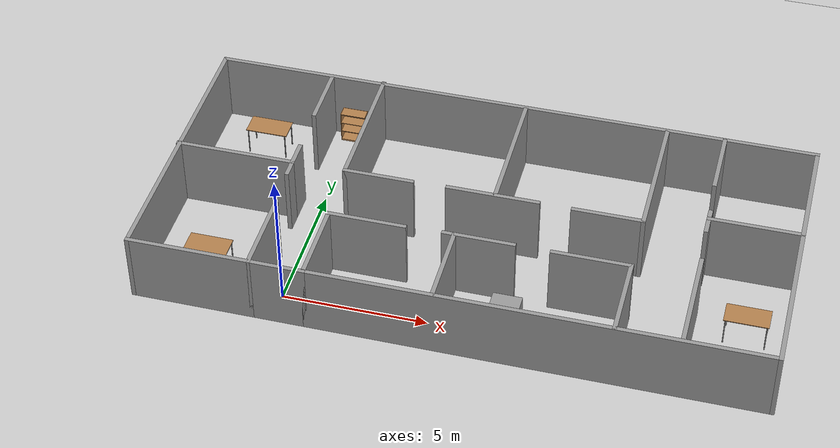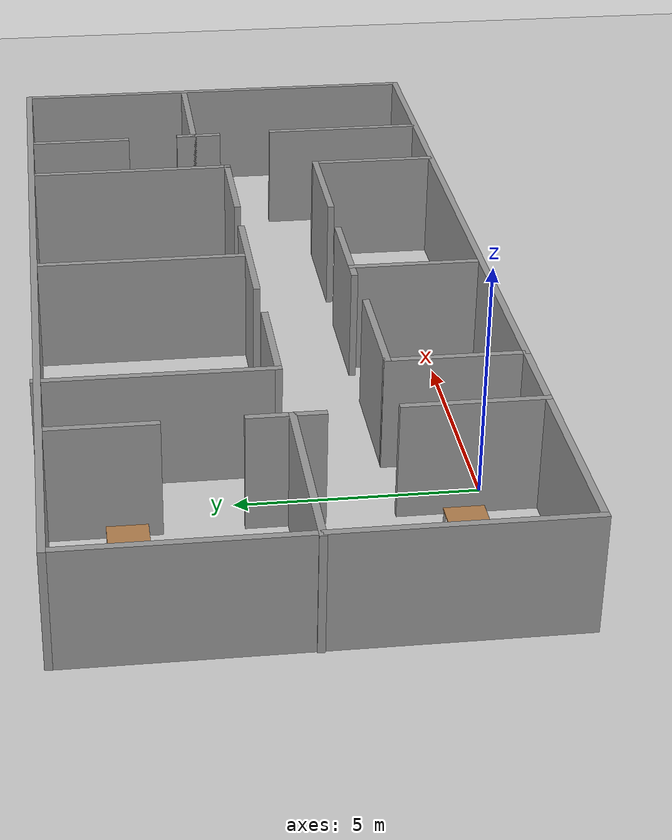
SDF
<sdf version="1.7">
 <world name="default">
  <light name="sun" type="directional">
   <pose>0 0 10 0 -0 0</pose>
   <diffuse>0.8 0.8 0.8 1</diffuse>
   <specular>0.2 0.2 0.2 1</specular>
   <attenuation>
    <range>1000</range>
    <constant>0.9</constant>
    <linear>0.01</linear>
    <quadratic>0.001</quadratic>
   </attenuation>
   <direction>-0.5 0.1 -0.9</direction>
   <spot><inner_angle>0</inner_angle><outer_angle>0</outer_angle><falloff>0</falloff></spot>
  </light>
  <model name="ground_plane">
   <static>1</static>
   <link name="link">
    <collision name="collision">
     <geometry><plane><normal>0 0 1</normal><size>100 100</size></plane></geometry>
     <surface><friction><ode><mu>100</mu><mu2>50</mu2></ode></friction></surface>
    </collision>
    <visual name="visual">
     <cast_shadows>0</cast_shadows>
     <geometry><plane><normal>0 0 1</normal><size>100 100</size></plane></geometry>
     <material>
      <script><uri>file://media/materials/scripts/gazebo.material</uri><name>Gazebo/Grey</name></script>
     </material>
    </visual>
   </link>
  </model>
  <gravity>0 0 -9.8</gravity>
  <magnetic_field>6e-06 2.3e-05 -4.2e-05</magnetic_field>
  <atmosphere type="adiabatic"/>
  <physics type="ode">
   <max_step_size>0.001</max_step_size>
   <real_time_factor>1</real_time_factor>
   <real_time_update_rate>1000</real_time_update_rate>
  </physics>
  <scene><ambient>0.4 0.4 0.4 1</ambient><background>0.7 0.7 0.7 1</background><shadows>1</shadows></scene>
  <spherical_coordinates>
   <surface_model>EARTH_WGS84</surface_model>
   <latitude_deg>0</latitude_deg>
   <longitude_deg>0</longitude_deg>
   <elevation>0</elevation>
   <heading_deg>0</heading_deg>
  </spherical_coordinates>
  <model name="lab">
   <pose>5.82028 3.86742 0 0 -0 0</pose>
   <link name="Wall_18">
    <collision name="Wall_18_Collision">
     <geometry><box><size>2 0.15 2.5</size></box></geometry>
     <pose>0 0 1.25 0 -0 0</pose>
    </collision>
    <visual name="Wall_18_Visual">
     <pose>0 0 1.25 0 -0 0</pose>
     <geometry><box><size>2 0.15 2.5</size></box></geometry>
     <material>
      <script><uri>file://media/materials/scripts/gazebo.material</uri><name>Gazebo/Grey</name></script>
      <ambient>1 1 1 1</ambient>
     </material>
     <meta><layer>0</layer></meta>
    </visual>
    <pose>-5.58098 -4.95508 0 0 -0 0</pose>
   </link>
   <link name="Wall_20">
    <collision name="Wall_20_Collision">
     <geometry><box><size>3 0.15 2.5</size></box></geometry>
     <pose>0 0 1.25 0 -0 0</pose>
    </collision>
    <visual name="Wall_20_Visual">
     <pose>0 0 1.25 0 -0 0</pose>
     <geometry><box><size>3 0.15 2.5</size></box></geometry>
     <material>
      <script><uri>file://media/materials/scripts/gazebo.material</uri><name>Gazebo/Grey</name></script>
      <ambient>1 1 1 1</ambient>
     </material>
     <meta><layer>0</layer></meta>
    </visual>
    <pose>-6.50598 -3.53008 0 0 -0 1.5708</pose>
   </link>
   <link name="Wall_22">
    <collision name="Wall_22_Collision">
     <geometry><box><size>3 0.15 2.5</size></box></geometry>
     <pose>0 0 1.25 0 -0 0</pose>
    </collision>
    <visual name="Wall_22_Visual">
     <pose>0 0 1.25 0 -0 0</pose>
     <geometry><box><size>3 0.15 2.5</size></box></geometry>
     <material>
      <script><uri>file://media/materials/scripts/gazebo.material</uri><name>Gazebo/Grey</name></script>
      <ambient>1 1 1 1</ambient>
     </material>
     <meta><layer>0</layer></meta>
    </visual>
    <pose>-4.65598 -3.53008 0 0 -0 1.5708</pose>
   </link>
   <link name="Wall_23">
    <collision name="Wall_23_Collision">
     <geometry><box><size>2.75 0.15 2.5</size></box></geometry>
     <pose>0 0 1.25 0 -0 0</pose>
    </collision>
    <visual name="Wall_23_Visual">
     <pose>0 0 1.25 0 -0 0</pose>
     <geometry><box><size>2.75 0.15 2.5</size></box></geometry>
     <material>
      <script><uri>file://media/materials/scripts/gazebo.material</uri><name>Gazebo/Grey</name></script>
      <ambient>1 1 1 1</ambient>
     </material>
     <meta><layer>0</layer></meta>
    </visual>
    <pose>-3.35598 -2.10508 0 0 -0 0</pose>
   </link>
   <link name="Wall_25">
    <collision name="Wall_25_Collision">
     <geometry><box><size>15.5 0.15 2.5</size></box></geometry>
     <pose>0 0 1.25 0 -0 0</pose>
    </collision>
    <visual name="Wall_25_Visual">
     <pose>0 0 1.25 0 -0 0</pose>
     <geometry><box><size>15.5 0.15 2.5</size></box></geometry>
     <material>
      <script><uri>file://media/materials/scripts/gazebo.material</uri><name>Gazebo/Grey</name></script>
      <ambient>1 1 1 1</ambient>
     </material>
     <meta><layer>0</layer></meta>
    </visual>
    <pose>3.01902 -4.95508 0 0 -0 0</pose>
   </link>
   <link name="Wall_26">
    <collision name="Wall_26_Collision">
     <geometry><box><size>10 0.15 2.5</size></box></geometry>
     <pose>0 0 1.25 0 -0 0</pose>
    </collision>
    <visual name="Wall_26_Visual">
     <pose>0 0 1.25 0 -0 0</pose>
     <geometry><box><size>10 0.15 2.5</size></box></geometry>
     <material>
      <script><uri>file://media/materials/scripts/gazebo.material</uri><name>Gazebo/Grey</name></script>
      <ambient>1 1 1 1</ambient>
     </material>
     <meta><layer>0</layer></meta>
    </visual>
    <pose>10.694 -0.030083 0 0 -0 1.5708</pose>
   </link>
   <link name="Wall_27">
    <collision name="Wall_27_Collision">
     <geometry><box><size>21.5 0.15 2.5</size></box></geometry>
     <pose>0 0 1.25 0 -0 0</pose>
    </collision>
    <visual name="Wall_27_Visual">
     <pose>0 0 1.25 0 -0 0</pose>
     <geometry><box><size>21.5 0.15 2.5</size></box></geometry>
     <material>
      <script><uri>file://media/materials/scripts/gazebo.material</uri><name>Gazebo/Grey</name></script>
      <ambient>1 1 1 1</ambient>
     </material>
     <meta><layer>0</layer></meta>
    </visual>
    <pose>0.019019 4.89492 0 0 -0 3.14159</pose>
   </link>
   <link name="Wall_28">
    <collision name="Wall_28_Collision">
     <geometry><box><size>10 0.15 2.5</size></box></geometry>
     <pose>0 0 1.25 0 -0 0</pose>
    </collision>
    <visual name="Wall_28_Visual">
     <pose>0 0 1.25 0 -0 0</pose>
     <geometry><box><size>10 0.15 2.5</size></box></geometry>
     <material>
      <script><uri>file://media/materials/scripts/gazebo.material</uri><name>Gazebo/Grey</name></script>
      <ambient>1 1 1 1</ambient>
     </material>
     <meta><layer>0</layer></meta>
    </visual>
    <pose>-10.656 -0.030083 0 0 -0 -1.5708</pose>
   </link>
   <link name="Wall_29">
    <collision name="Wall_29_Collision">
     <geometry><box><size>4.3 0.15 2.5</size></box></geometry>
     <pose>0 0 1.25 0 -0 0</pose>
    </collision>
    <visual name="Wall_29_Visual">
     <pose>0 0 1.25 0 -0 0</pose>
     <geometry><box><size>4.3 0.15 2.5</size></box></geometry>
     <material>
      <script><uri>file://media/materials/scripts/gazebo.material</uri><name>Gazebo/Grey</name></script>
      <ambient>1 1 1 1</ambient>
     </material>
     <meta><layer>0</layer></meta>
    </visual>
    <pose>-8.58098 -4.95508 0 0 -0 0</pose>
   </link>
   <link name="Wall_35">
    <collision name="Wall_35_Collision">
     <geometry><box><size>3.75 0.15 2.5</size></box></geometry>
     <pose>0 0 1.25 0 -0 0</pose>
    </collision>
    <visual name="Wall_35_Visual">
     <pose>0 0 1.25 0 -0 0</pose>
     <geometry><box><size>3.75 0.15 2.5</size></box></geometry>
     <material>
      <script><uri>file://media/materials/scripts/gazebo.material</uri><name>Gazebo/Grey</name></script>
      <ambient>1 1 1 1</ambient>
     </material>
     <meta><layer>0</layer></meta>
    </visual>
    <pose>7.65443 -3.04684 0 0 -0 1.5708</pose>
   </link>
   <link name="Wall_37">
    <collision name="Wall_37_Collision">
     <geometry><box><size>3.25 0.15 2.5</size></box></geometry>
     <pose>0 0 1.25 0 -0 0</pose>
    </collision>
    <visual name="Wall_37_Visual">
     <pose>0 0 1.25 0 -0 0</pose>
     <geometry><box><size>3.25 0.15 2.5</size></box></geometry>
     <material>
      <script><uri>file://media/materials/scripts/gazebo.material</uri><name>Gazebo/Grey</name></script>
      <ambient>1 1 1 1</ambient>
     </material>
     <meta><layer>0</layer></meta>
    </visual>
    <pose>9.13454 0.773895 0 0 -0 3.14159</pose>
   </link>
   <link name="Wall_38">
    <collision name="Wall_38_Collision">
     <geometry><box><size>0.75 0.15 2.5</size></box></geometry>
     <pose>0 0 1.25 0 -0 0</pose>
    </collision>
    <visual name="Wall_38_Visual">
     <pose>0 0 1.25 0 -0 0</pose>
     <geometry><box><size>0.75 0.15 2.5</size></box></geometry>
     <material>
      <script><uri>file://media/materials/scripts/gazebo.material</uri><name>Gazebo/Grey</name></script>
      <ambient>1 1 1 1</ambient>
     </material>
     <meta><layer>0</layer></meta>
    </visual>
    <pose>7.58454 0.473895 0 0 -0 -1.5708</pose>
   </link>
   <link name="Wall_40">
    <collision name="Wall_40_Collision">
     <geometry><box><size>0.5 0.15 2.5</size></box></geometry>
     <pose>0 0 1.25 0 -0 0</pose>
    </collision>
    <visual name="Wall_40_Visual">
     <pose>0 0 1.25 0 -0 0</pose>
     <geometry><box><size>0.5 0.15 2.5</size></box></geometry>
     <material>
      <script><uri>file://media/materials/scripts/gazebo.material</uri><name>Gazebo/Grey</name></script>
      <ambient>1 1 1 1</ambient>
     </material>
     <meta><layer>0</layer></meta>
    </visual>
    <pose>7.58454 0.948895 0 0 -0 1.5708</pose>
   </link>
   <link name="Wall_42">
    <collision name="Wall_42_Collision">
     <geometry><box><size>2.5 0.15 2.5</size></box></geometry>
     <pose>0 0 1.25 0 -0 0</pose>
    </collision>
    <visual name="Wall_42_Visual">
     <pose>0 0 1.25 0 -0 0</pose>
     <geometry><box><size>2.5 0.15 2.5</size></box></geometry>
     <material>
      <script><uri>file://media/materials/scripts/gazebo.material</uri><name>Gazebo/Grey</name></script>
      <ambient>1 1 1 1</ambient>
     </material>
     <meta><layer>0</layer></meta>
    </visual>
    <pose>7.51565 3.66988 0 0 -0 -1.5708</pose>
   </link>
   <link name="Wall_44">
    <collision name="Wall_44_Collision">
     <geometry><box><size>0.75 0.15 2.5</size></box></geometry>
     <pose>0 0 1.25 0 -0 0</pose>
    </collision>
    <visual name="Wall_44_Visual">
     <pose>0 0 1.25 0 -0 0</pose>
     <geometry><box><size>0.75 0.15 2.5</size></box></geometry>
     <material>
      <script><uri>file://media/materials/scripts/gazebo.material</uri><name>Gazebo/Grey</name></script>
      <ambient>1 1 1 1</ambient>
     </material>
     <meta><layer>0</layer></meta>
    </visual>
    <pose>-6.59402 -0.244549 0 0 -0 1.5708</pose>
   </link>
   <link name="Wall_45">
    <collision name="Wall_45_Collision">
     <geometry><box><size>4.25 0.15 2.5</size></box></geometry>
     <pose>0 0 1.25 0 -0 0</pose>
    </collision>
    <visual name="Wall_45_Visual">
     <pose>0 0 1.25 0 -0 0</pose>
     <geometry><box><size>4.25 0.15 2.5</size></box></geometry>
     <material>
      <script><uri>file://media/materials/scripts/gazebo.material</uri><name>Gazebo/Grey</name></script>
      <ambient>1 1 1 1</ambient>
     </material>
     <meta><layer>0</layer></meta>
    </visual>
    <pose>-8.64402 0.05545 0 0 -0 3.14159</pose>
   </link>
   <link name="Wall_47">
    <collision name="Wall_47_Collision">
     <geometry><box><size>1 0.15 2.5</size></box></geometry>
     <pose>0 0 1.25 0 -0 0</pose>
    </collision>
    <visual name="Wall_47_Visual">
     <pose>0 0 1.25 0 -0 0</pose>
     <geometry><box><size>1 0.15 2.5</size></box></geometry>
     <material>
      <script><uri>file://media/materials/scripts/gazebo.material</uri><name>Gazebo/Grey</name></script>
      <ambient>1 1 1 1</ambient>
     </material>
     <meta><layer>0</layer></meta>
    </visual>
    <pose>-6.59402 0.480451 0 0 -0 1.5708</pose>
   </link>
   <link name="Wall_50">
    <collision name="Wall_50_Collision">
     <geometry><box><size>2.25 0.15 2.5</size></box></geometry>
     <pose>0 0 1.25 0 -0 0</pose>
    </collision>
    <visual name="Wall_50_Visual">
     <pose>0 0 1.25 0 -0 0</pose>
     <geometry><box><size>2.25 0.15 2.5</size></box></geometry>
     <material>
      <script><uri>file://media/materials/scripts/gazebo.material</uri><name>Gazebo/Grey</name></script>
      <ambient>1 1 1 1</ambient>
     </material>
     <meta><layer>0</layer></meta>
    </visual>
    <pose>-6.6199 3.71143 0 0 -0 -1.5708</pose>
   </link>
   <link name="Wall_52">
    <collision name="Wall_52_Collision">
     <geometry><box><size>5 0.15 2.5</size></box></geometry>
     <pose>0 0 1.25 0 -0 0</pose>
    </collision>
    <visual name="Wall_52_Visual">
     <pose>0 0 1.25 0 -0 0</pose>
     <geometry><box><size>5 0.15 2.5</size></box></geometry>
     <material>
      <script><uri>file://media/materials/scripts/gazebo.material</uri><name>Gazebo/Grey</name></script>
      <ambient>1 1 1 1</ambient>
     </material>
     <meta><layer>0</layer></meta>
    </visual>
    <pose>-4.74537 2.53008 0 0 -0 1.5708</pose>
   </link>
   <link name="Wall_56">
    <collision name="Wall_56_Collision">
     <geometry><box><size>4.89963 0.15 2.5</size></box></geometry>
     <pose>0 0 1.25 0 -0 0</pose>
    </collision>
    <visual name="Wall_56_Visual">
     <pose>0 0 1.25 0 -0 0</pose>
     <geometry><box><size>4.89963 0.15 2.5</size></box></geometry>
     <material>
      <script><uri>file://media/materials/scripts/gazebo.material</uri><name>Gazebo/Grey</name></script>
      <ambient>1 1 1 1</ambient>
     </material>
     <meta><layer>0</layer></meta>
    </visual>
    <pose>5.51351 2.49159 0 0 -0 -1.5708</pose>
   </link>
   <link name="Wall_57">
    <collision name="Wall_57_Collision">
     <geometry><box><size>2.5 0.15 2.5</size></box></geometry>
     <pose>0 0 1.25 0 -0 0</pose>
    </collision>
    <visual name="Wall_57_Visual">
     <pose>0 0 1.25 0 -0 0</pose>
     <geometry><box><size>2.5 0.15 2.5</size></box></geometry>
     <material>
      <script><uri>file://media/materials/scripts/gazebo.material</uri><name>Gazebo/Grey</name></script>
      <ambient>1 1 1 1</ambient>
     </material>
     <meta><layer>0</layer></meta>
    </visual>
    <pose>4.32702 0.116835 0 0 -0 3.14159</pose>
   </link>
   <link name="Wall_59">
    <collision name="Wall_59_Collision">
     <geometry><box><size>2.5 0.15 2.5</size></box></geometry>
     <pose>0 0 1.25 0 -0 0</pose>
    </collision>
    <visual name="Wall_59_Visual">
     <pose>0 0 1.25 0 -0 0</pose>
     <geometry><box><size>2.5 0.15 2.5</size></box></geometry>
     <material>
      <script><uri>file://media/materials/scripts/gazebo.material</uri><name>Gazebo/Grey</name></script>
      <ambient>1 1 1 1</ambient>
     </material>
     <meta><layer>0</layer></meta>
    </visual>
    <pose>-3.57037 0.105083 0 0 -0 0</pose>
   </link>
   <link name="Wall_61">
    <collision name="Wall_61_Collision">
     <geometry><box><size>3.25 0.15 2.5</size></box></geometry>
     <pose>0 0 1.25 0 -0 0</pose>
    </collision>
    <visual name="Wall_61_Visual">
     <pose>0 0 1.25 0 -0 0</pose>
     <geometry><box><size>3.25 0.15 2.5</size></box></geometry>
     <material>
      <script><uri>file://media/materials/scripts/gazebo.material</uri><name>Gazebo/Grey</name></script>
      <ambient>1 1 1 1</ambient>
     </material>
     <meta><layer>0</layer></meta>
    </visual>
    <pose>0.399614 0.139232 0 0 -0 0</pose>
   </link>
   <link name="Wall_63">
    <collision name="Wall_63_Collision">
     <geometry><box><size>4.75 0.15 2.5</size></box></geometry>
     <pose>0 0 1.25 0 -0 0</pose>
    </collision>
    <visual name="Wall_63_Visual">
     <pose>0 0 1.25 0 -0 0</pose>
     <geometry><box><size>4.75 0.15 2.5</size></box></geometry>
     <material>
      <script><uri>file://media/materials/scripts/gazebo.material</uri><name>Gazebo/Grey</name></script>
      <ambient>1 1 1 1</ambient>
     </material>
     <meta><layer>0</layer></meta>
    </visual>
    <pose>0.482614 2.49673 0 0 -0 1.5708</pose>
   </link>
   <link name="Wall_65">
    <collision name="Wall_65_Collision">
     <geometry><box><size>3 0.15 2.5</size></box></geometry>
     <pose>0 0 1.25 0 -0 0</pose>
    </collision>
    <visual name="Wall_65_Visual">
     <pose>0 0 1.25 0 -0 0</pose>
     <geometry><box><size>3 0.15 2.5</size></box></geometry>
     <material>
      <script><uri>file://media/materials/scripts/gazebo.material</uri><name>Gazebo/Grey</name></script>
      <ambient>1 1 1 1</ambient>
     </material>
     <meta><layer>0</layer></meta>
    </visual>
    <pose>5.50833 -3.49123 0 0 -0 1.5708</pose>
   </link>
   <link name="Wall_66">
    <collision name="Wall_66_Collision">
     <geometry><box><size>2.75 0.15 2.5</size></box></geometry>
     <pose>0 0 1.25 0 -0 0</pose>
    </collision>
    <visual name="Wall_66_Visual">
     <pose>0 0 1.25 0 -0 0</pose>
     <geometry><box><size>2.75 0.15 2.5</size></box></geometry>
     <material>
      <script><uri>file://media/materials/scripts/gazebo.material</uri><name>Gazebo/Grey</name></script>
      <ambient>1 1 1 1</ambient>
     </material>
     <meta><layer>0</layer></meta>
    </visual>
    <pose>4.20833 -2.06623 0 0 -0 3.14159</pose>
   </link>
   <link name="Wall_68">
    <collision name="Wall_68_Collision">
     <geometry><box><size>2.5 0.15 2.5</size></box></geometry>
     <pose>0 0 1.25 0 -0 0</pose>
    </collision>
    <visual name="Wall_68_Visual">
     <pose>0 0 1.25 0 -0 0</pose>
     <geometry><box><size>2.5 0.15 2.5</size></box></geometry>
     <material>
      <script><uri>file://media/materials/scripts/gazebo.material</uri><name>Gazebo/Grey</name></script>
      <ambient>1 1 1 1</ambient>
     </material>
     <meta><layer>0</layer></meta>
    </visual>
    <pose>0.444383 -2.05346 0 0 -0 0</pose>
   </link>
   <link name="Wall_70">
    <collision name="Wall_70_Collision">
     <geometry><box><size>3 0.15 2.5</size></box></geometry>
     <pose>0 0 1.25 0 -0 0</pose>
    </collision>
    <visual name="Wall_70_Visual">
     <pose>0 0 1.25 0 -0 0</pose>
     <geometry><box><size>3 0.15 2.5</size></box></geometry>
     <material>
      <script><uri>file://media/materials/scripts/gazebo.material</uri><name>Gazebo/Grey</name></script>
      <ambient>1 1 1 1</ambient>
     </material>
     <meta><layer>0</layer></meta>
    </visual>
    <pose>-0.374127 -3.48051 0 0 -0 -1.5708</pose>
   </link>
   <static>1</static>
  </model>
  <model name="ball_bearing">
   <link name="link">
    <pose>0 0 0.003 0 -0 0</pose>
    <inertial>
     <mass>0.0011</mass>
     <inertia>
      <ixx>3.96e-09</ixx>
      <ixy>0</ixy>
      <ixz>0</ixz>
      <iyy>3.96e-09</iyy>
      <iyz>0</iyz>
      <izz>3.96e-09</izz>
     </inertia>
    </inertial>
    <collision name="collision">
     <geometry><sphere><radius>0.003</radius></sphere></geometry>
     <surface>
      <contact>
       <poissons_ratio>0.305</poissons_ratio>
       <elastic_modulus>2e+11</elastic_modulus>
       <ode><kp>100000</kp><kd>100</kd><max_vel>100</max_vel><min_depth>0.001</min_depth></ode>
      </contact>
      <friction>
       <torsional>
        <coefficient>1</coefficient>
        <use_patch_radius>0</use_patch_radius>
        <surface_radius>0.01</surface_radius>
       </torsional>
      </friction>
     </surface>
    </collision>
    <visual name="visual">
     <geometry><sphere><radius>0.003</radius></sphere></geometry>
     <material>
      <script><uri>file://media/materials/scripts/gazebo.material</uri><name>Gazebo/Grey</name></script>
     </material>
    </visual>
    <velocity_decay><linear>0</linear><angular>0.005</angular></velocity_decay>
   </link>
   <pose>-9.06934 4.08619 -0.001 0 -0 0</pose>
  </model>
  <model name="table_clone">
   <static>1</static>
   <link name="link">
    <collision name="surface">
     <pose>0 0 1 0 -0 0</pose>
     <geometry><box><size>1.5 0.8 0.03</size></box></geometry>
     <surface><friction><ode><mu>0.6</mu><mu2>0.6</mu2></ode></friction></surface>
    </collision>
    <visual name="visual1">
     <pose>0 0 1 0 -0 0</pose>
     <geometry><box><size>1.5 0.8 0.03</size></box></geometry>
     <material>
      <script><uri>file://media/materials/scripts/gazebo.material</uri><name>Gazebo/Wood</name></script>
     </material>
    </visual>
    <collision name="front_left_leg">
     <pose>0.68 0.38 0.5 0 -0 0</pose>
     <geometry><cylinder><radius>0.02</radius><length>1</length></cylinder></geometry>
    </collision>
    <visual name="front_left_leg">
     <pose>0.68 0.38 0.5 0 -0 0</pose>
     <geometry><cylinder><radius>0.02</radius><length>1</length></cylinder></geometry>
     <material>
      <script><uri>file://media/materials/scripts/gazebo.material</uri><name>Gazebo/Grey</name></script>
     </material>
    </visual>
    <collision name="front_right_leg">
     <pose>0.68 -0.38 0.5 0 -0 0</pose>
     <geometry><cylinder><radius>0.02</radius><length>1</length></cylinder></geometry>
    </collision>
    <visual name="front_right_leg">
     <pose>0.68 -0.38 0.5 0 -0 0</pose>
     <geometry><cylinder><radius>0.02</radius><length>1</length></cylinder></geometry>
     <material>
      <script><uri>file://media/materials/scripts/gazebo.material</uri><name>Gazebo/Grey</name></script>
     </material>
    </visual>
    <collision name="back_right_leg">
     <pose>-0.68 -0.38 0.5 0 -0 0</pose>
     <geometry><cylinder><radius>0.02</radius><length>1</length></cylinder></geometry>
    </collision>
    <visual name="back_right_leg">
     <pose>-0.68 -0.38 0.5 0 -0 0</pose>
     <geometry><cylinder><radius>0.02</radius><length>1</length></cylinder></geometry>
     <material>
      <script><uri>file://media/materials/scripts/gazebo.material</uri><name>Gazebo/Grey</name></script>
     </material>
    </visual>
    <collision name="back_left_leg">
     <pose>-0.68 0.38 0.5 0 -0 0</pose>
     <geometry><cylinder><radius>0.02</radius><length>1</length></cylinder></geometry>
    </collision>
    <visual name="back_left_leg">
     <pose>-0.68 0.38 0.5 0 -0 0</pose>
     <geometry><cylinder><radius>0.02</radius><length>1</length></cylinder></geometry>
     <material>
      <script><uri>file://media/materials/scripts/gazebo.material</uri><name>Gazebo/Grey</name></script>
     </material>
    </visual>
   </link>
   <pose>-2.82384 0.797284 0 0 -0 0</pose>
  </model>
  <model name="table_clone_0">
   <static>1</static>
   <link name="link">
    <collision name="surface">
     <pose>0 0 1 0 -0 0</pose>
     <geometry><box><size>1.5 0.8 0.03</size></box></geometry>
     <surface><friction><ode><mu>0.6</mu><mu2>0.6</mu2></ode></friction></surface>
    </collision>
    <visual name="visual1">
     <pose>0 0 1 0 -0 0</pose>
     <geometry><box><size>1.5 0.8 0.03</size></box></geometry>
     <material>
      <script><uri>file://media/materials/scripts/gazebo.material</uri><name>Gazebo/Wood</name></script>
     </material>
    </visual>
    <collision name="front_left_leg">
     <pose>0.68 0.38 0.5 0 -0 0</pose>
     <geometry><cylinder><radius>0.02</radius><length>1</length></cylinder></geometry>
    </collision>
    <visual name="front_left_leg">
     <pose>0.68 0.38 0.5 0 -0 0</pose>
     <geometry><cylinder><radius>0.02</radius><length>1</length></cylinder></geometry>
     <material>
      <script><uri>file://media/materials/scripts/gazebo.material</uri><name>Gazebo/Grey</name></script>
     </material>
    </visual>
    <collision name="front_right_leg">
     <pose>0.68 -0.38 0.5 0 -0 0</pose>
     <geometry><cylinder><radius>0.02</radius><length>1</length></cylinder></geometry>
    </collision>
    <visual name="front_right_leg">
     <pose>0.68 -0.38 0.5 0 -0 0</pose>
     <geometry><cylinder><radius>0.02</radius><length>1</length></cylinder></geometry>
     <material>
      <script><uri>file://media/materials/scripts/gazebo.material</uri><name>Gazebo/Grey</name></script>
     </material>
    </visual>
    <collision name="back_right_leg">
     <pose>-0.68 -0.38 0.5 0 -0 0</pose>
     <geometry><cylinder><radius>0.02</radius><length>1</length></cylinder></geometry>
    </collision>
    <visual name="back_right_leg">
     <pose>-0.68 -0.38 0.5 0 -0 0</pose>
     <geometry><cylinder><radius>0.02</radius><length>1</length></cylinder></geometry>
     <material>
      <script><uri>file://media/materials/scripts/gazebo.material</uri><name>Gazebo/Grey</name></script>
     </material>
    </visual>
    <collision name="back_left_leg">
     <pose>-0.68 0.38 0.5 0 -0 0</pose>
     <geometry><cylinder><radius>0.02</radius><length>1</length></cylinder></geometry>
    </collision>
    <visual name="back_left_leg">
     <pose>-0.68 0.38 0.5 0 -0 0</pose>
     <geometry><cylinder><radius>0.02</radius><length>1</length></cylinder></geometry>
     <material>
      <script><uri>file://media/materials/scripts/gazebo.material</uri><name>Gazebo/Grey</name></script>
     </material>
    </visual>
   </link>
   <pose>-2.75205 7.19052 0 0 -0 0</pose>
  </model>
  <model name="table_clone_1">
   <static>1</static>
   <link name="link">
    <collision name="surface">
     <pose>0 0 1 0 -0 0</pose>
     <geometry><box><size>1.5 0.8 0.03</size></box></geometry>
     <surface><friction><ode><mu>0.6</mu><mu2>0.6</mu2></ode></friction></surface>
    </collision>
    <visual name="visual1">
     <pose>0 0 1 0 -0 0</pose>
     <geometry><box><size>1.5 0.8 0.03</size></box></geometry>
     <material>
      <script><uri>file://media/materials/scripts/gazebo.material</uri><name>Gazebo/Wood</name></script>
     </material>
    </visual>
    <collision name="front_left_leg">
     <pose>0.68 0.38 0.5 0 -0 0</pose>
     <geometry><cylinder><radius>0.02</radius><length>1</length></cylinder></geometry>
    </collision>
    <visual name="front_left_leg">
     <pose>0.68 0.38 0.5 0 -0 0</pose>
     <geometry><cylinder><radius>0.02</radius><length>1</length></cylinder></geometry>
     <material>
      <script><uri>file://media/materials/scripts/gazebo.material</uri><name>Gazebo/Grey</name></script>
     </material>
    </visual>
    <collision name="front_right_leg">
     <pose>0.68 -0.38 0.5 0 -0 0</pose>
     <geometry><cylinder><radius>0.02</radius><length>1</length></cylinder></geometry>
    </collision>
    <visual name="front_right_leg">
     <pose>0.68 -0.38 0.5 0 -0 0</pose>
     <geometry><cylinder><radius>0.02</radius><length>1</length></cylinder></geometry>
     <material>
      <script><uri>file://media/materials/scripts/gazebo.material</uri><name>Gazebo/Grey</name></script>
     </material>
    </visual>
    <collision name="back_right_leg">
     <pose>-0.68 -0.38 0.5 0 -0 0</pose>
     <geometry><cylinder><radius>0.02</radius><length>1</length></cylinder></geometry>
    </collision>
    <visual name="back_right_leg">
     <pose>-0.68 -0.38 0.5 0 -0 0</pose>
     <geometry><cylinder><radius>0.02</radius><length>1</length></cylinder></geometry>
     <material>
      <script><uri>file://media/materials/scripts/gazebo.material</uri><name>Gazebo/Grey</name></script>
     </material>
    </visual>
    <collision name="back_left_leg">
     <pose>-0.68 0.38 0.5 0 -0 0</pose>
     <geometry><cylinder><radius>0.02</radius><length>1</length></cylinder></geometry>
    </collision>
    <visual name="back_left_leg">
     <pose>-0.68 0.38 0.5 0 -0 0</pose>
     <geometry><cylinder><radius>0.02</radius><length>1</length></cylinder></geometry>
     <material>
      <script><uri>file://media/materials/scripts/gazebo.material</uri><name>Gazebo/Grey</name></script>
     </material>
    </visual>
   </link>
   <pose>15.2214 1.97489 0 0 -0 0</pose>
  </model>
  <model name="unit_box">
   <pose>7.48233 0.468472 0.499995 1e-05 -0 0</pose>
   <link name="link">
    <inertial>
     <mass>1</mass>
     <inertia>
      <ixx>0.166667</ixx>
      <ixy>0</ixy>
      <ixz>0</ixz>
      <iyy>0.166667</iyy>
      <iyz>0</iyz>
      <izz>0.166667</izz>
     </inertia>
    </inertial>
    <collision name="collision"><geometry><box><size>1 1 1</size></box></geometry></collision>
    <visual name="visual">
     <geometry><box><size>1 1 1</size></box></geometry>
     <material>
      <script><name>Gazebo/Grey</name><uri>file://media/materials/scripts/gazebo.material</uri></script>
     </material>
    </visual>
   </link>
  </model>
  <model name="ball_bearing_0">
   <link name="link">
    <pose>0 0 0.003 0 -0 0</pose>
    <inertial>
     <mass>0.0011</mass>
     <inertia>
      <ixx>3.96e-09</ixx>
      <ixy>0</ixy>
      <ixz>0</ixz>
      <iyy>3.96e-09</iyy>
      <iyz>0</iyz>
      <izz>3.96e-09</izz>
     </inertia>
    </inertial>
    <collision name="collision">
     <geometry><sphere><radius>0.003</radius></sphere></geometry>
     <surface>
      <contact>
       <poissons_ratio>0.305</poissons_ratio>
       <elastic_modulus>2e+11</elastic_modulus>
       <ode><kp>100000</kp><kd>100</kd><max_vel>100</max_vel><min_depth>0.001</min_depth></ode>
      </contact>
      <friction>
       <torsional>
        <coefficient>1</coefficient>
        <use_patch_radius>0</use_patch_radius>
        <surface_radius>0.01</surface_radius>
       </torsional>
      </friction>
     </surface>
    </collision>
    <visual name="visual">
     <geometry><sphere><radius>0.003</radius></sphere></geometry>
     <material>
      <script><uri>file://media/materials/scripts/gazebo.material</uri><name>Gazebo/Grey</name></script>
     </material>
    </visual>
    <velocity_decay><linear>0</linear><angular>0.005</angular></velocity_decay>
   </link>
   <pose>3.40566 3.40418 -0.000161 0 -0 0</pose>
  </model>
  <model name="bookshelf">
   <static>1</static>
   <link name="link">
    <inertial><mass>1</mass></inertial>
    <collision name="back">
     <pose>0 0.005 0.6 0 -0 0</pose>
     <geometry><box><size>0.9 0.01 1.2</size></box></geometry>
    </collision>
    <visual name="visual1">
     <pose>0 0.005 0.6 0 -0 0</pose>
     <geometry><box><size>0.9 0.01 1.2</size></box></geometry>
     <material>
      <script><uri>file://media/materials/scripts/gazebo.material</uri><name>Gazebo/Wood</name></script>
     </material>
    </visual>
    <collision name="left_side">
     <pose>0.45 -0.195 0.6 0 -0 0</pose>
     <geometry><box><size>0.02 0.4 1.2</size></box></geometry>
    </collision>
    <visual name="visual2">
     <pose>0.45 -0.195 0.6 0 -0 0</pose>
     <geometry><box><size>0.02 0.4 1.2</size></box></geometry>
     <material>
      <script><uri>file://media/materials/scripts/gazebo.material</uri><name>Gazebo/Wood</name></script>
     </material>
    </visual>
    <collision name="right_side">
     <pose>-0.45 -0.195 0.6 0 -0 0</pose>
     <geometry><box><size>0.02 0.4 1.2</size></box></geometry>
    </collision>
    <visual name="visual3">
     <pose>-0.45 -0.195 0.6 0 -0 0</pose>
     <geometry><box><size>0.02 0.4 1.2</size></box></geometry>
     <material>
      <script><uri>file://media/materials/scripts/gazebo.material</uri><name>Gazebo/Wood</name></script>
     </material>
    </visual>
    <collision name="bottom">
     <pose>0 -0.195 0.03 0 -0 0</pose>
     <geometry><box><size>0.88 0.4 0.06</size></box></geometry>
    </collision>
    <visual name="visual4">
     <pose>0 -0.195 0.03 0 -0 0</pose>
     <geometry><box><size>0.88 0.4 0.06</size></box></geometry>
     <material>
      <script><uri>file://media/materials/scripts/gazebo.material</uri><name>Gazebo/Wood</name></script>
     </material>
    </visual>
    <collision name="top">
     <pose>0 -0.195 1.19 0 -0 0</pose>
     <geometry><box><size>0.88 0.4 0.02</size></box></geometry>
    </collision>
    <visual name="visual5">
     <pose>0 -0.195 1.19 0 -0 0</pose>
     <geometry><box><size>0.88 0.4 0.02</size></box></geometry>
     <material>
      <script><uri>file://media/materials/scripts/gazebo.material</uri><name>Gazebo/Wood</name></script>
     </material>
    </visual>
    <collision name="low_shelf">
     <pose>0 -0.195 0.43 0 -0 0</pose>
     <geometry><box><size>0.88 0.4 0.02</size></box></geometry>
    </collision>
    <visual name="visual6">
     <pose>0 -0.195 0.43 0 -0 0</pose>
     <geometry><box><size>0.88 0.4 0.02</size></box></geometry>
     <material>
      <script><uri>file://media/materials/scripts/gazebo.material</uri><name>Gazebo/Wood</name></script>
     </material>
    </visual>
    <collision name="high_shelf">
     <pose>0 -0.195 0.8 0 -0 0</pose>
     <geometry><box><size>0.88 0.4 0.02</size></box></geometry>
    </collision>
    <visual name="visual7">
     <pose>0 -0.195 0.8 0 -0 0</pose>
     <geometry><box><size>0.88 0.4 0.02</size></box></geometry>
     <material>
      <script><uri>file://media/materials/scripts/gazebo.material</uri><name>Gazebo/Wood</name></script>
     </material>
    </visual>
   </link>
   <pose>0.052715 8.64985 0 0 -0 0</pose>
  </model>
 </world>
</sdf>
